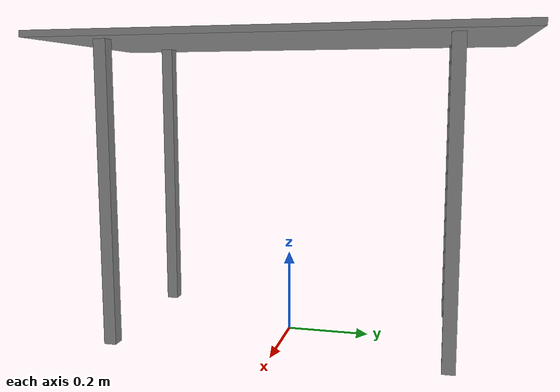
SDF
<?xml version="1.0"?>
<sdf version="1.6">
  <model name="rwc2015/kitchencounter">
    <link name="1_link">
      <collision name="1_col">
        <geometry>
          <box>
            <size>0.55 1.1 0.015</size>
          </box>
        </geometry>
      </collision>
      <visual name="1_vis">
        <geometry>
          <box>
            <size>0.55 1.1 0.015</size>
          </box>
        </geometry>
        <material>
          <ambient>0.5 0.5 0.5 1</ambient>
        </material>
      </visual>
      <pose>0.0 0.0 0.7275 0 0 0</pose>
    </link>
    <link name="2_link">
      <collision name="2_col">
        <geometry>
          <box>
            <size>0.03 0.03 0.7275</size>
          </box>
        </geometry>
      </collision>
      <visual name="2_vis">
        <geometry>
          <box>
            <size>0.03 0.03 0.7275</size>
          </box>
        </geometry>
        <material>
          <ambient>0.5 0.5 0.5 1</ambient>
        </material>
      </visual>
      <pose>-0.19 -0.395 0.36375 0 0 0</pose>
    </link>
    <link name="3_link">
      <collision name="3_col">
        <geometry>
          <box>
            <size>0.03 0.03 0.7275</size>
          </box>
        </geometry>
      </collision>
      <visual name="3_vis">
        <geometry>
          <box>
            <size>0.03 0.03 0.7275</size>
          </box>
        </geometry>
        <material>
          <ambient>0.5 0.5 0.5 1</ambient>
        </material>
      </visual>
      <pose>0.19 -0.395 0.36375 0 0 0</pose>
    </link>
    <link name="4_link">
      <collision name="4_col">
        <geometry>
          <box>
            <size>0.03 0.03 0.7275</size>
          </box>
        </geometry>
      </collision>
      <visual name="4_vis">
        <geometry>
          <box>
            <size>0.03 0.03 0.7275</size>
          </box>
        </geometry>
        <material>
          <ambient>0.5 0.5 0.5 1</ambient>
        </material>
      </visual>
      <pose>-0.19 0.395 0.36375 0 0 0</pose>
    </link>
    <link name="5_link">
      <collision name="5_col">
        <geometry>
          <box>
            <size>0.03 0.03 0.7275</size>
          </box>
        </geometry>
      </collision>
      <visual name="5_vis">
        <geometry>
          <box>
            <size>0.03 0.03 0.7275</size>
          </box>
        </geometry>
        <material>
          <ambient>0.5 0.5 0.5 1</ambient>
        </material>
      </visual>
      <pose>0.19 0.395 0.36375 0 0 0</pose>
    </link>
    <link name="in_front_of">
      <virtual_volume name="in_front_of_vv">
        <geometry>
          <box>
            <size>0.7 0.3 1</size>
          </box>
        </geometry>
        <pose>0.65 0.0 0.5 0 0 0</pose>
      </virtual_volume>
    </link>
    <static>true</static>
  </model>
</sdf>
